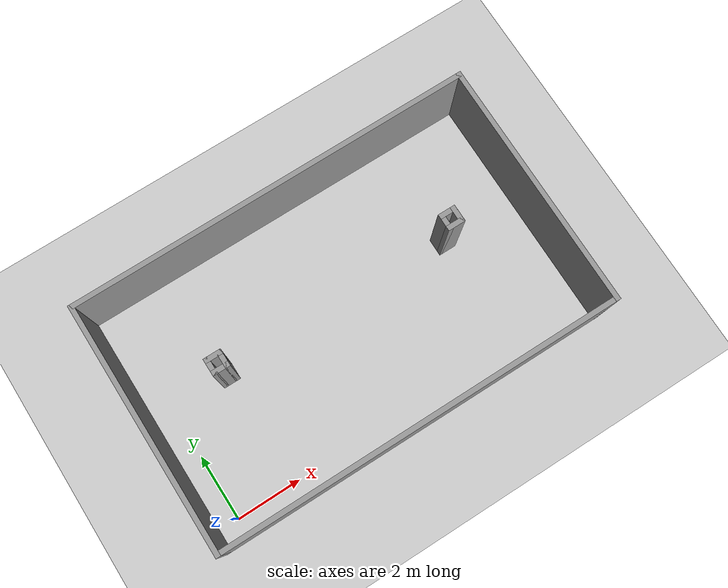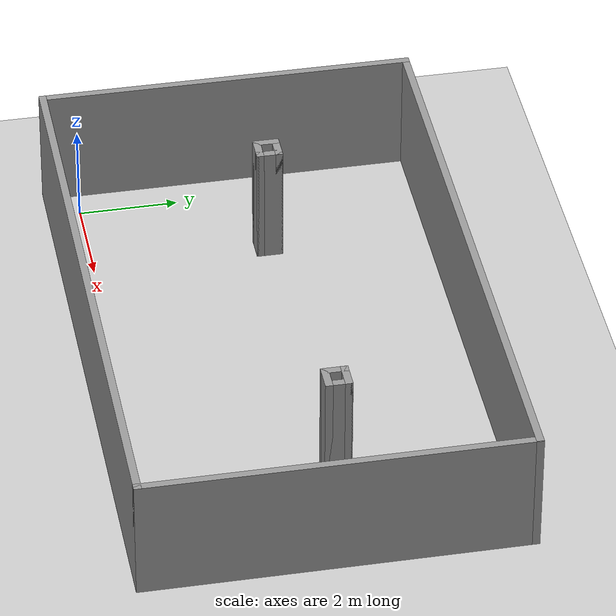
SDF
<sdf version="1.7">
 <world name="default">
  <light name="sun" type="directional">
   <pose>0 0 10 0 -0 0</pose>
   <diffuse>0.8 0.8 0.8 1</diffuse>
   <specular>0.2 0.2 0.2 1</specular>
   <attenuation>
    <range>1000</range>
    <constant>0.9</constant>
    <linear>0.01</linear>
    <quadratic>0.001</quadratic>
   </attenuation>
   <direction>-0.5 0.1 -0.9</direction>
   <spot><inner_angle>0</inner_angle><outer_angle>0</outer_angle><falloff>0</falloff></spot>
  </light>
  <model name="ground_plane">
   <static>1</static>
   <link name="link">
    <collision name="collision">
     <geometry><plane><normal>0 0 1</normal><size>100 100</size></plane></geometry>
     <surface><friction><ode><mu>100</mu><mu2>50</mu2></ode></friction></surface>
    </collision>
    <visual name="visual">
     <cast_shadows>0</cast_shadows>
     <geometry><plane><normal>0 0 1</normal><size>100 100</size></plane></geometry>
     <material>
      <script><uri>file://media/materials/scripts/gazebo.material</uri><name>Gazebo/Grey</name></script>
     </material>
    </visual>
   </link>
  </model>
  <gravity>0 0 -9.8</gravity>
  <magnetic_field>6e-06 2.3e-05 -4.2e-05</magnetic_field>
  <atmosphere type="adiabatic"/>
  <physics type="ode">
   <max_step_size>0.001</max_step_size>
   <real_time_factor>1</real_time_factor>
   <real_time_update_rate>1000</real_time_update_rate>
  </physics>
  <scene><ambient>0.4 0.4 0.4 1</ambient><background>0.7 0.7 0.7 1</background><shadows>1</shadows></scene>
  <spherical_coordinates>
   <surface_model>EARTH_WGS84</surface_model>
   <latitude_deg>0</latitude_deg>
   <longitude_deg>0</longitude_deg>
   <elevation>0</elevation>
   <heading_deg>0</heading_deg>
  </spherical_coordinates>
  <model name="Untitled">
   <pose>5.465 3.15 0 0 -0 0</pose>
   <link name="Wall_11">
    <collision name="Wall_11_Collision">
     <geometry><box><size>12.42 0.15 2.5</size></box></geometry>
     <pose>0 0 1.25 0 -0 0</pose>
    </collision>
    <visual name="Wall_11_Visual">
     <pose>0 0 1.25 0 -0 0</pose>
     <geometry><box><size>12.42 0.15 2.5</size></box></geometry>
     <material>
      <script><uri>file://media/materials/scripts/gazebo.material</uri><name>Gazebo/Grey</name></script>
      <ambient>1 1 1 1</ambient>
     </material>
     <meta><layer>0</layer></meta>
    </visual>
    <pose>-0 3.74 0 0 -0 0</pose>
   </link>
   <link name="Wall_49">
    <collision name="Wall_49_Collision">
     <geometry><box><size>0.53 0.15 2.5</size></box></geometry>
     <pose>0 0 1.25 0 -0 0</pose>
    </collision>
    <visual name="Wall_49_Visual">
     <pose>0 0 1.25 0 -0 0</pose>
     <geometry><box><size>0.53 0.15 2.5</size></box></geometry>
     <material>
      <script><uri>file://media/materials/scripts/gazebo.material</uri><name>Gazebo/Grey</name></script>
      <ambient>1 1 1 1</ambient>
     </material>
     <meta><layer>0</layer></meta>
    </visual>
    <pose>-3.655 0.24 0 0 -0 0</pose>
   </link>
   <link name="Wall_5">
    <collision name="Wall_5_Collision">
     <geometry><box><size>7.63 0.15 2.5</size></box></geometry>
     <pose>0 0 1.25 0 -0 0</pose>
    </collision>
    <visual name="Wall_5_Visual">
     <pose>0 0 1.25 0 -0 0</pose>
     <geometry><box><size>7.63 0.15 2.5</size></box></geometry>
     <material>
      <script><uri>file://media/materials/scripts/gazebo.material</uri><name>Gazebo/Grey</name></script>
      <ambient>1 1 1 1</ambient>
     </material>
     <meta><layer>0</layer></meta>
    </visual>
    <pose>-6.135 0 0 0 -0 1.5708</pose>
   </link>
   <link name="Wall_51">
    <collision name="Wall_51_Collision">
     <geometry><box><size>0.53 0.15 2.5</size></box></geometry>
     <pose>0 0 1.25 0 -0 0</pose>
    </collision>
    <visual name="Wall_51_Visual">
     <pose>0 0 1.25 0 -0 0</pose>
     <geometry><box><size>0.53 0.15 2.5</size></box></geometry>
     <material>
      <script><uri>file://media/materials/scripts/gazebo.material</uri><name>Gazebo/Grey</name></script>
      <ambient>1 1 1 1</ambient>
     </material>
     <meta><layer>0</layer></meta>
    </visual>
    <pose>-3.465 0.43 0 0 -0 1.5708</pose>
   </link>
   <link name="Wall_54">
    <collision name="Wall_54_Collision">
     <geometry><box><size>0.53 0.15 2.5</size></box></geometry>
     <pose>0 0 1.25 0 -0 0</pose>
    </collision>
    <visual name="Wall_54_Visual">
     <pose>0 0 1.25 0 -0 0</pose>
     <geometry><box><size>0.53 0.15 2.5</size></box></geometry>
     <material>
      <script><uri>file://media/materials/scripts/gazebo.material</uri><name>Gazebo/Grey</name></script>
      <ambient>1 1 1 1</ambient>
     </material>
     <meta><layer>0</layer></meta>
    </visual>
    <pose>-3.655 0.62 0 0 -0 3.14159</pose>
   </link>
   <link name="Wall_56">
    <collision name="Wall_56_Collision">
     <geometry><box><size>0.53 0.15 2.5</size></box></geometry>
     <pose>0 0 1.25 0 -0 0</pose>
    </collision>
    <visual name="Wall_56_Visual">
     <pose>0 0 1.25 0 -0 0</pose>
     <geometry><box><size>0.53 0.15 2.5</size></box></geometry>
     <material>
      <script><uri>file://media/materials/scripts/gazebo.material</uri><name>Gazebo/Grey</name></script>
      <ambient>1 1 1 1</ambient>
     </material>
     <meta><layer>0</layer></meta>
    </visual>
    <pose>-3.845 0.43 0 0 -0 -1.5708</pose>
   </link>
   <link name="Wall_58">
    <collision name="Wall_58_Collision">
     <geometry><box><size>0.53 0.15 2.5</size></box></geometry>
     <pose>0 0 1.25 0 -0 0</pose>
    </collision>
    <visual name="Wall_58_Visual">
     <pose>0 0 1.25 0 -0 0</pose>
     <geometry><box><size>0.53 0.15 2.5</size></box></geometry>
     <material>
      <script><uri>file://media/materials/scripts/gazebo.material</uri><name>Gazebo/Grey</name></script>
      <ambient>1 1 1 1</ambient>
     </material>
     <meta><layer>0</layer></meta>
    </visual>
    <pose>3.66825 0.228544 0 0 -0 3.14159</pose>
   </link>
   <link name="Wall_60">
    <collision name="Wall_60_Collision">
     <geometry><box><size>0.53 0.15 2.5</size></box></geometry>
     <pose>0 0 1.25 0 -0 0</pose>
    </collision>
    <visual name="Wall_60_Visual">
     <pose>0 0 1.25 0 -0 0</pose>
     <geometry><box><size>0.53 0.15 2.5</size></box></geometry>
     <material>
      <script><uri>file://media/materials/scripts/gazebo.material</uri><name>Gazebo/Grey</name></script>
      <ambient>1 1 1 1</ambient>
     </material>
     <meta><layer>0</layer></meta>
    </visual>
    <pose>3.47825 0.418544 0 0 -0 1.5708</pose>
   </link>
   <link name="Wall_62">
    <collision name="Wall_62_Collision">
     <geometry><box><size>0.53 0.15 2.5</size></box></geometry>
     <pose>0 0 1.25 0 -0 0</pose>
    </collision>
    <visual name="Wall_62_Visual">
     <pose>0 0 1.25 0 -0 0</pose>
     <geometry><box><size>0.53 0.15 2.5</size></box></geometry>
     <material>
      <script><uri>file://media/materials/scripts/gazebo.material</uri><name>Gazebo/Grey</name></script>
      <ambient>1 1 1 1</ambient>
     </material>
     <meta><layer>0</layer></meta>
    </visual>
    <pose>3.66825 0.608544 0 0 -0 0</pose>
   </link>
   <link name="Wall_64">
    <collision name="Wall_64_Collision">
     <geometry><box><size>0.53 0.15 2.5</size></box></geometry>
     <pose>0 0 1.25 0 -0 0</pose>
    </collision>
    <visual name="Wall_64_Visual">
     <pose>0 0 1.25 0 -0 0</pose>
     <geometry><box><size>0.53 0.15 2.5</size></box></geometry>
     <material>
      <script><uri>file://media/materials/scripts/gazebo.material</uri><name>Gazebo/Grey</name></script>
      <ambient>1 1 1 1</ambient>
     </material>
     <meta><layer>0</layer></meta>
    </visual>
    <pose>3.85825 0.418544 0 0 -0 -1.5708</pose>
   </link>
   <link name="Wall_7">
    <collision name="Wall_7_Collision">
     <geometry><box><size>12.42 0.15 2.5</size></box></geometry>
     <pose>0 0 1.25 0 -0 0</pose>
    </collision>
    <visual name="Wall_7_Visual">
     <pose>0 0 1.25 0 -0 0</pose>
     <geometry><box><size>12.42 0.15 2.5</size></box></geometry>
     <material>
      <script><uri>file://media/materials/scripts/gazebo.material</uri><name>Gazebo/Grey</name></script>
      <ambient>1 1 1 1</ambient>
     </material>
     <meta><layer>0</layer></meta>
    </visual>
    <pose>-0 -3.74 0 0 -0 0</pose>
   </link>
   <link name="Wall_9">
    <collision name="Wall_9_Collision">
     <geometry><box><size>7.63 0.15 2.5</size></box></geometry>
     <pose>0 0 1.25 0 -0 0</pose>
    </collision>
    <visual name="Wall_9_Visual">
     <pose>0 0 1.25 0 -0 0</pose>
     <geometry><box><size>7.63 0.15 2.5</size></box></geometry>
     <material>
      <script><uri>file://media/materials/scripts/gazebo.material</uri><name>Gazebo/Grey</name></script>
      <ambient>1 1 1 1</ambient>
     </material>
     <meta><layer>0</layer></meta>
    </visual>
    <pose>6.135 0 0 0 -0 1.5708</pose>
   </link>
   <static>1</static>
  </model>
 </world>
</sdf>
